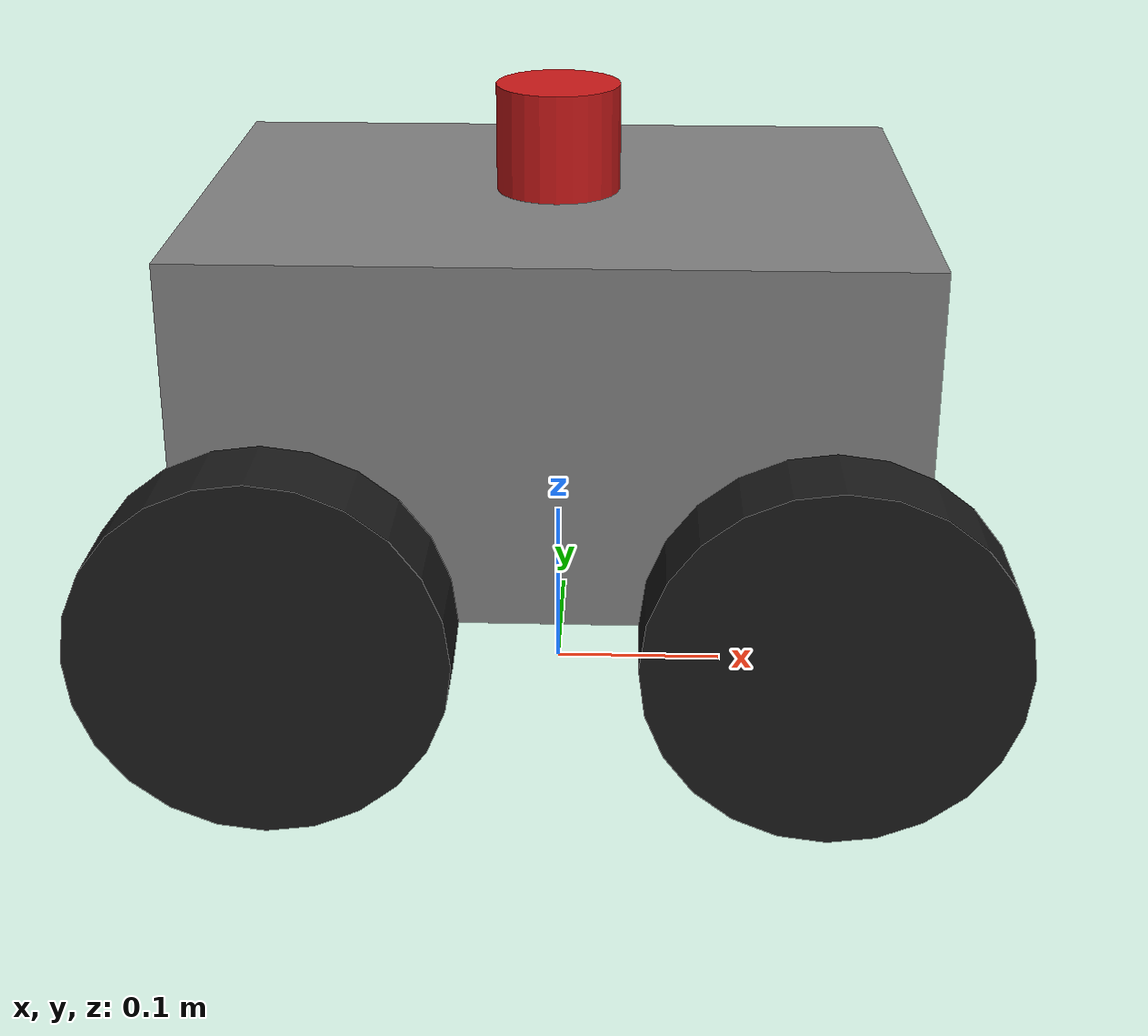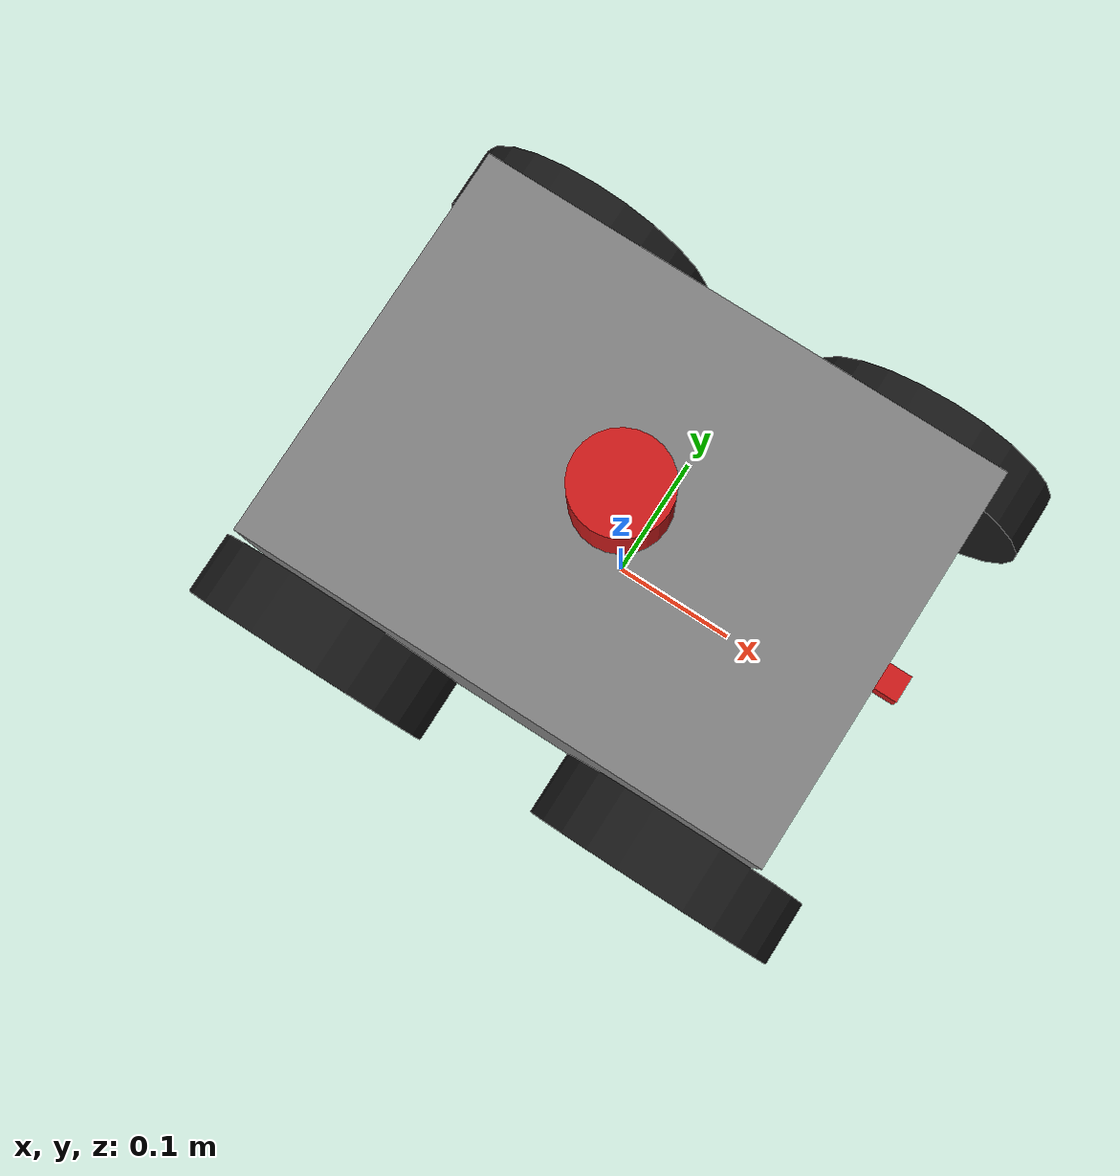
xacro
<?xml version="1.0"?>
<robot name="robot_desmalezador" xmlns:xacro="http://ros.org/wiki/xacro">

  <!-- 1. MATERIALES Y COLORES                        -->
  <material name="chasis_color">
    <color rgba="0.5 0.5 0.5 1"/> <!-- Gris aluminio -->
  </material>

  <material name="rueda_color">
    <color rgba="0.1 0.1 0.1 1"/> <!-- Negro -->
  </material>

  <material name="lidar_color">
    <color rgba="0.8 0.1 0.1 1"/> <!-- Rojo oscuro -->
  </material>

  <!-- 2. CHASIS BASE                                 -->
  <!-- Dimensiones: 40cm largo (x), 30cm ancho (y), 20cm alto (z) -->

  <link name="base_footprint"/>

  <joint name="base_joint" type="fixed">
    <parent link="base_footprint"/>
    <child link="base_link"/>
    <!-- Elevamos el chasis para que el eje de las ruedas quede alineado -->
    <origin xyz="0 0 0.1016" rpy="0 0 0"/>
  </joint>

  <link name="base_link">
    <visual>
      <!-- Centro del chasis un poco más arriba del eje -->
      <origin xyz="0 0 0.1" rpy="0 0 0"/>
      <geometry>
        <box size="0.4 0.3 0.2"/>
      </geometry>
      <material name="chasis_color"/>
    </visual>
    <collision>
      <origin xyz="0 0 0.1" rpy="0 0 0"/>
      <geometry>
        <box size="0.4 0.3 0.2"/>
      </geometry>
    </collision>
    <inertial>
      <mass value="25.0"/>
      <!-- Inercia aproximada de una caja de masa 25kg -->
      <inertia ixx="0.2708" ixy="0.0" ixz="0.0" iyy="0.4166" iyz="0.0" izz="0.5208"/>
    </inertial>
  </link>

  <!-- 3. RUEDAS                                      -->
  <!-- Ruedas de 10.16 cm de radio (20.32 cm diámetro)-->
  <!-- Asumimos que están montadas en las esquinas    -->

  <!-- Macro para crear las 4 ruedas fácilmente -->
  <xacro:macro name="rueda" params="prefix x_reflect y_reflect">
    <link name="${prefix}_wheel">
      <visual>
        <!-- Girar cilindro para que ruede bien -->
        <origin xyz="0 0 0" rpy="1.57079632679 0 0"/>
        <geometry>
          <cylinder radius="0.1016" length="0.05"/>
        </geometry>
        <material name="rueda_color"/>
      </visual>
      <collision>
        <origin xyz="0 0 0" rpy="1.57079632679 0 0"/>
        <geometry>
          <cylinder radius="0.1016" length="0.05"/>
        </geometry>
      </collision>
      <inertial>
        <mass value="0.8"/> <!-- 3.2kg total / 4 ruedas -->
        <inertia ixx="0.0022" ixy="0" ixz="0" iyy="0.0022" iyz="0" izz="0.0041"/>
      </inertial>
    </link>

    <joint name="${prefix}_wheel_joint" type="continuous">
      <parent link="base_link"/>
      <child link="${prefix}_wheel"/>
      <!-- x: +- 0.15m (30cm separación entre ejes del/tras), y: +- 0.175m (afuera del chasis 30cm) -->
      <origin xyz="${x_reflect * 0.15} ${y_reflect * 0.175} 0" rpy="0 0 0"/>
      <axis xyz="0 1 0"/>
    </joint>
  </xacro:macro>

  <!-- Instanciar las 4 ruedas -->
  <xacro:rueda prefix="front_left"  x_reflect="1"  y_reflect="1" />
  <xacro:rueda prefix="front_right" x_reflect="1"  y_reflect="-1" />
  <xacro:rueda prefix="rear_left"   x_reflect="-1" y_reflect="1" />
  <xacro:rueda prefix="rear_right"  x_reflect="-1" y_reflect="-1" />

  <!-- 4. SENSOR LIDAR (RPLIDAR A1)                   -->

  <link name="lidar_link">
    <visual>
      <geometry>
        <cylinder radius="0.035" length="0.06"/>
      </geometry>
      <material name="lidar_color"/>
    </visual>
    <collision>
      <geometry>
        <cylinder radius="0.035" length="0.06"/>
      </geometry>
    </collision>
  </link>

  <!-- Montaje del LiDAR: Arriba del chasis, apuntando hacia un lado (-90 grados en yaw) -->
  <joint name="lidar_joint" type="fixed">
    <parent link="base_link"/>
    <child link="lidar_link"/>
    <!-- Cambio: rpy="0 0 0" en lugar de -1.57... -->
    <origin xyz="0 0 0.23" rpy="0 0 0"/>
  </joint>
  <!-- 5. PLUGINS DE GAZEBO                           -->

  <!-- Plugin Skid Steer Drive (Para robot de 4 ruedas) -->
  <!-- Plugin de Movimiento (Diff Drive / Skid Steer en Gazebo Fortress) -->
  <gazebo>
    <plugin filename="ignition-gazebo-diff-drive-system" name="ignition::gazebo::systems::DiffDrive">
      <!-- Ruedas izquierdas y derechas -->
      <left_joint>front_left_wheel_joint</left_joint>
      <left_joint>rear_left_wheel_joint</left_joint>
      <right_joint>front_right_wheel_joint</right_joint>
      <right_joint>rear_right_wheel_joint</right_joint>

      <wheel_separation>0.35</wheel_separation>
      <wheel_radius>0.1016</wheel_radius>

      <topic>/cmd_vel</topic>
      <odom_topic>/odom</odom_topic>
      <tf_topic>/tf</tf_topic>
      <frame_id>odom</frame_id>
      <child_frame_id>base_footprint</child_frame_id>
    </plugin>
  </gazebo>

  <!-- Plugin del RPLiDAR en Gazebo Fortress -->
  <gazebo reference="lidar_link">
    <sensor type="gpu_lidar" name="rplidar_sensor">
      <topic>/scan</topic>
      <update_rate>10</update_rate>
      <lidar>
        <scan>
          <horizontal>
            <samples>360</samples>
            <resolution>1</resolution>
            <min_angle>-3.14159</min_angle>
            <max_angle>3.14159</max_angle>
          </horizontal>
        </scan>
        <range>
          <min>0.15</min>
          <max>12.0</max>
          <resolution>0.01</resolution>
        </range>
      </lidar>
      <always_on>1</always_on>
      <visualize>true</visualize>
    </sensor>
  </gazebo>

  <!-- 6. TF-MINI (SENSOR DE DISTANCIA FRONTAL)       -->
  <link name="tfmini_link">
    <visual>
      <geometry><box size="0.02 0.02 0.02"/></geometry>
      <material name="lidar_color"/>
    </visual>
  </link>

  <joint name="tfmini_joint" type="fixed">
    <parent link="base_link"/>
    <child link="tfmini_link"/>
    <!-- CAMBIO: x = 0.21 para que sobresalga de la caja de colisión del chasis (que mide 0.4 total, es decir +-0.2) -->
    <origin xyz="0.21 0 0.15" rpy="0 0 0"/>
  </joint>

  <gazebo reference="tfmini_link">
    <!-- En Ignition Fortress usamos gpu_lidar para garantizar que el rayo choque bien con mallas -->
    <sensor type="gpu_lidar" name="tfmini_sensor">
      <!-- Asegurarnos de que el tópico base sea limpio -->
      <topic>/tf_mini/scan</topic>
      <update_rate>20</update_rate>
      <lidar>
        <scan>
          <horizontal>
            <!-- 3 rayos muy juntos simulando un haz concentrado para evitar que pase por agujeros en la malla -->
            <samples>3</samples>
            <resolution>1</resolution>
            <min_angle>-0.01</min_angle>
            <max_angle>0.01</max_angle>
          </horizontal>
        </scan>
        <range>
          <min>0.02</min> <!-- Reducimos el mínimo para evitar -inf si algo toca el chasis -->
          <max>12.0</max>
          <resolution>0.01</resolution>
        </range>
      </lidar>
      <always_on>1</always_on>
      <visualize>true</visualize>
    </sensor>
  </gazebo>

</robot>
